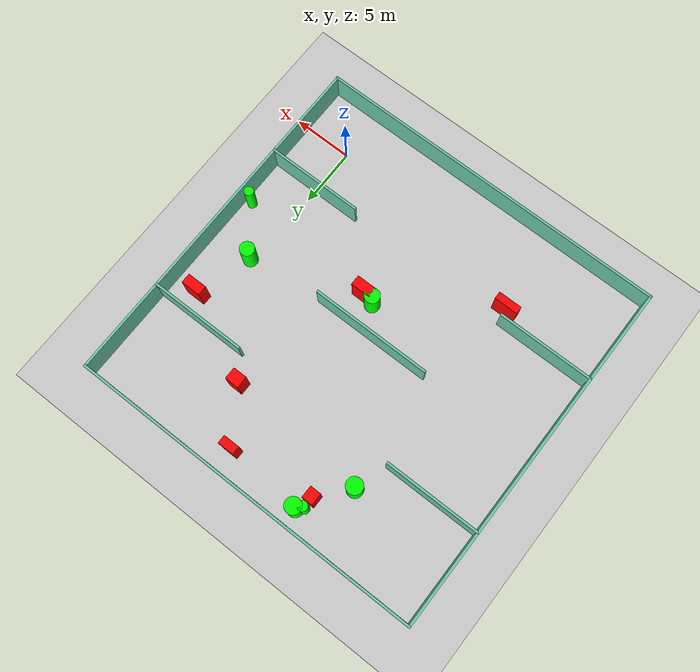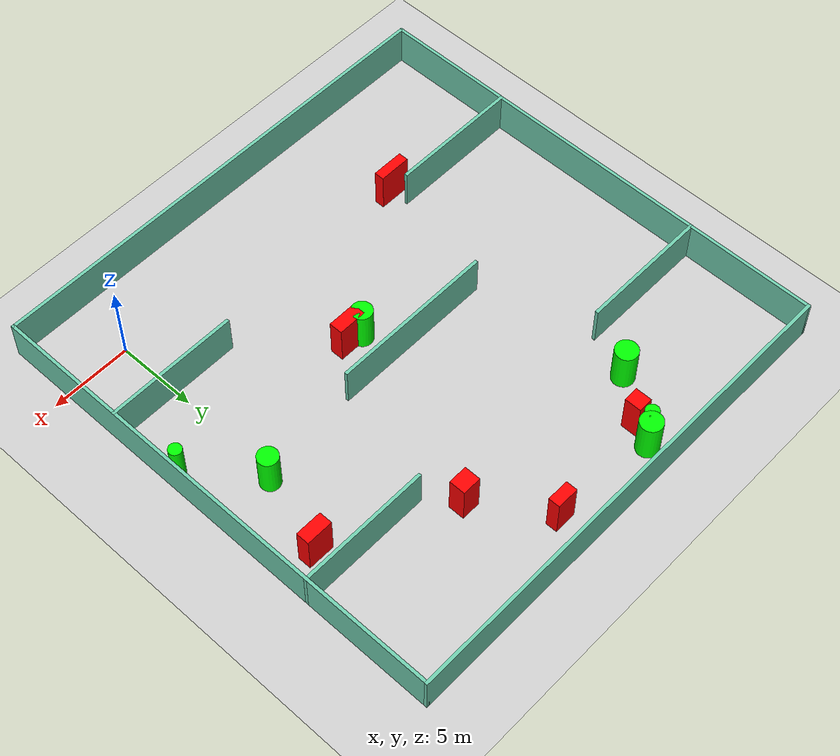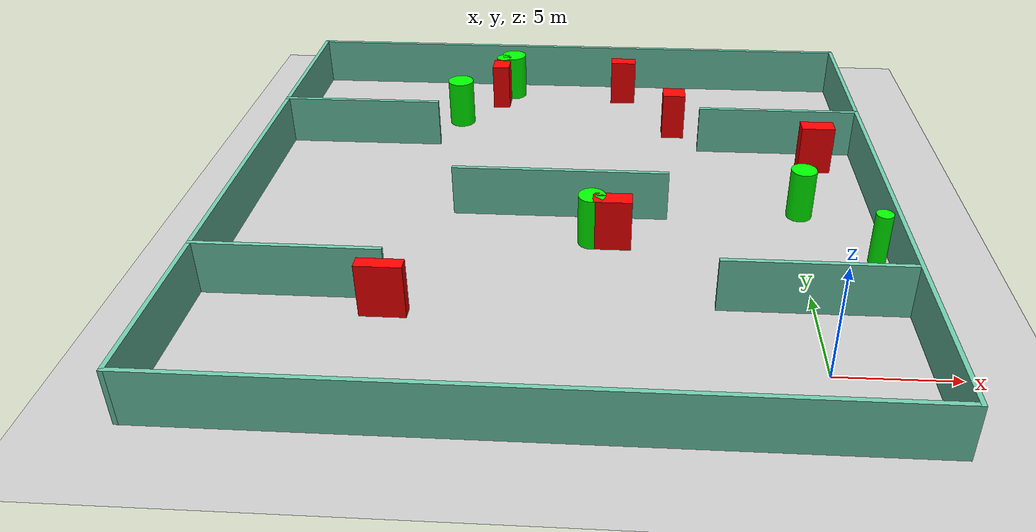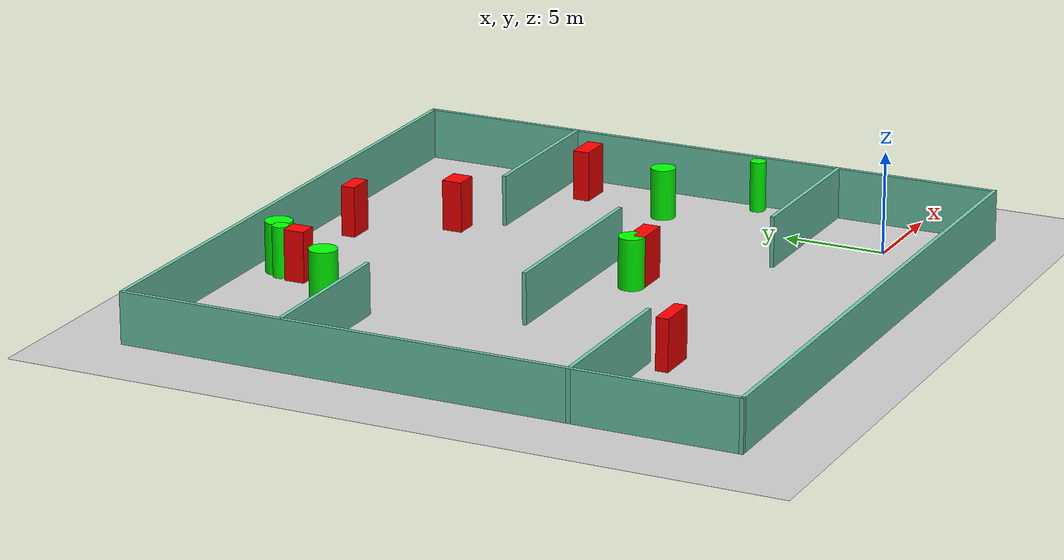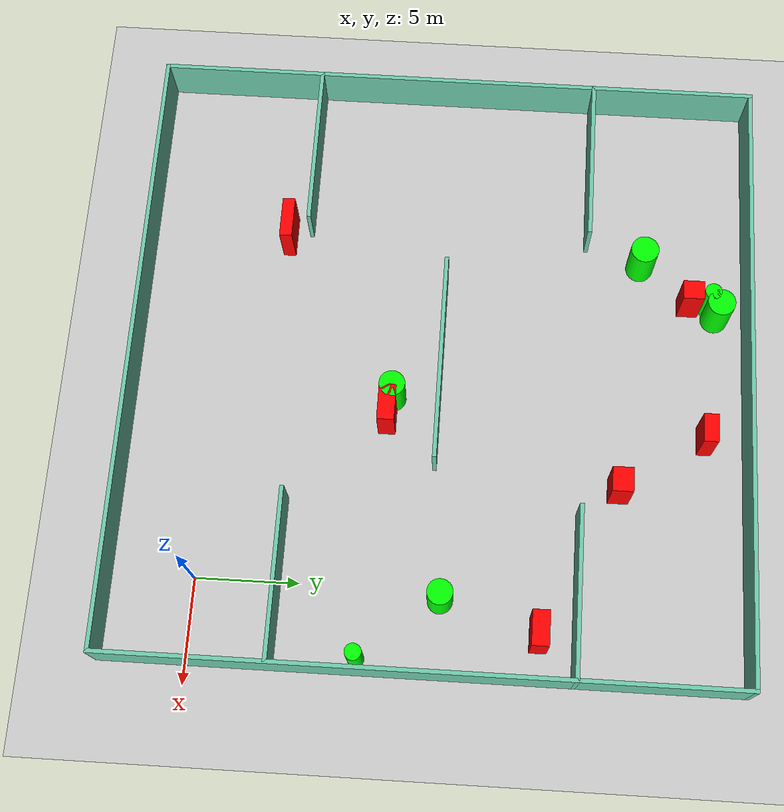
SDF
<sdf version="1.7">
 <world name="default">
  <light name="sun" type="directional">
   <pose>0 0 10 0 -0 0</pose>
   <diffuse>0.8 0.8 0.8 1</diffuse>
   <specular>0.2 0.2 0.2 1</specular>
   <attenuation>
    <range>1000</range>
    <constant>0.9</constant>
    <linear>0.01</linear>
    <quadratic>0.001</quadratic>
   </attenuation>
   <direction>-0.5 0.1 -0.9</direction>
   <spot><inner_angle>0</inner_angle><outer_angle>0</outer_angle><falloff>0</falloff></spot>
  </light>
  <model name="ground_plane">
   <static>1</static>
   <link name="link">
    <collision name="collision">
     <geometry><plane><normal>0 0 1</normal><size>100 100</size></plane></geometry>
     <surface>
      <contact><collide_bitmask>65535</collide_bitmask></contact>
      <friction><ode><mu>100</mu><mu2>50</mu2></ode></friction>
     </surface>
    </collision>
    <visual name="visual">
     <cast_shadows>0</cast_shadows>
     <geometry><plane><normal>0 0 1</normal><size>100 100</size></plane></geometry>
     <material>
      <script><uri>file://media/materials/scripts/gazebo.material</uri><name>Gazebo/Grey</name></script>
     </material>
    </visual>
   </link>
  </model>
  <gravity>0 0 -9.8</gravity>
  <magnetic_field>6e-06 2.3e-05 -4.2e-05</magnetic_field>
  <atmosphere type="adiabatic"/>
  <physics type="ode">
   <max_step_size>0.001</max_step_size>
   <real_time_factor>1</real_time_factor>
   <real_time_update_rate>1000</real_time_update_rate>
  </physics>
  <scene><ambient>0.4 0.4 0.4 1</ambient><background>0.7 0.7 0.7 1</background><shadows>1</shadows></scene>
  <spherical_coordinates>
   <surface_model>EARTH_WGS84</surface_model>
   <latitude_deg>0</latitude_deg>
   <longitude_deg>0</longitude_deg>
   <elevation>0</elevation>
   <heading_deg>0</heading_deg>
  </spherical_coordinates>
  <model name="my_base_walls">
   <link name="Wall_10">
    <collision name="Wall_10_Collision">
     <geometry><box><size>8.2 0.2 2.5</size></box></geometry>
     <pose>0 0 1.25 0 -0 0</pose>
    </collision>
    <visual name="Wall_10_Visual">
     <pose>0 0 1.25 0 -0 0</pose>
     <geometry><box><size>8.2 0.2 2.5</size></box></geometry>
     <material>
      <script><uri>file://media/materials/scripts/gazebo.material</uri><name>Gazebo/Grey</name></script>
      <ambient>0.435294 0.796078 0.67451 1</ambient>
     </material>
     <meta><layer>0</layer></meta>
    </visual>
    <pose>-11 -7 0 0 -0 0</pose>
   </link>
   <link name="Wall_12">
    <collision name="Wall_12_Collision">
     <geometry><box><size>8.2 0.2 2.5</size></box></geometry>
     <pose>0 0 1.25 0 -0 0</pose>
    </collision>
    <visual name="Wall_12_Visual">
     <pose>0 0 1.25 0 -0 0</pose>
     <geometry><box><size>8.2 0.2 2.5</size></box></geometry>
     <material>
      <script><uri>file://media/materials/scripts/gazebo.material</uri><name>Gazebo/Grey</name></script>
      <ambient>0.435294 0.796078 0.67451 1</ambient>
     </material>
     <meta><layer>0</layer></meta>
    </visual>
    <pose>-11 7 0 0 -0 0</pose>
   </link>
   <link name="Wall_14">
    <collision name="Wall_14_Collision">
     <geometry><box><size>8.2 0.2 2.5</size></box></geometry>
     <pose>0 0 1.25 0 -0 0</pose>
    </collision>
    <visual name="Wall_14_Visual">
     <pose>0 0 1.25 0 -0 0</pose>
     <geometry><box><size>8.2 0.2 2.5</size></box></geometry>
     <material>
      <script><uri>file://media/materials/scripts/gazebo.material</uri><name>Gazebo/Grey</name></script>
      <ambient>0.435294 0.796078 0.67451 1</ambient>
     </material>
     <meta><layer>0</layer></meta>
    </visual>
    <pose>11 7 0 0 -0 3.14159</pose>
   </link>
   <link name="Wall_16">
    <collision name="Wall_16_Collision">
     <geometry><box><size>10.2 0.2 2.5</size></box></geometry>
     <pose>0 0 1.25 0 -0 0</pose>
    </collision>
    <visual name="Wall_16_Visual">
     <pose>0 0 1.25 0 -0 0</pose>
     <geometry><box><size>10.2 0.2 2.5</size></box></geometry>
     <material>
      <script><uri>file://media/materials/scripts/gazebo.material</uri><name>Gazebo/Grey</name></script>
      <ambient>0.435294 0.796078 0.67451 1</ambient>
     </material>
     <meta><layer>0</layer></meta>
    </visual>
    <pose>0 0 0 0 -0 3.14159</pose>
   </link>
   <link name="Wall_2">
    <collision name="Wall_2_Collision">
     <geometry><box><size>30.2 0.2 2.5</size></box></geometry>
     <pose>0 0 1.25 0 -0 0</pose>
    </collision>
    <visual name="Wall_2_Visual">
     <pose>0 0 1.25 0 -0 0</pose>
     <geometry><box><size>30.2 0.2 2.5</size></box></geometry>
     <material>
      <script><uri>file://media/materials/scripts/gazebo.material</uri><name>Gazebo/Grey</name></script>
      <ambient>0.435294 0.796078 0.67451 1</ambient>
     </material>
     <meta><layer>0</layer></meta>
    </visual>
    <pose>0 -15 0 0 -0 3.14159</pose>
   </link>
   <link name="Wall_3">
    <collision name="Wall_3_Collision">
     <geometry><box><size>30.2 0.2 2.5</size></box></geometry>
     <pose>0 0 1.25 0 -0 0</pose>
    </collision>
    <visual name="Wall_3_Visual">
     <pose>0 0 1.25 0 -0 0</pose>
     <geometry><box><size>30.2 0.2 2.5</size></box></geometry>
     <material>
      <script><uri>file://media/materials/scripts/gazebo.material</uri><name>Gazebo/Grey</name></script>
      <ambient>0.435294 0.796078 0.67451 1</ambient>
     </material>
     <meta><layer>0</layer></meta>
    </visual>
    <pose>-15 0 0 0 -0 1.5708</pose>
   </link>
   <link name="Wall_4">
    <collision name="Wall_4_Collision">
     <geometry><box><size>30.2 0.2 2.5</size></box></geometry>
     <pose>0 0 1.25 0 -0 0</pose>
    </collision>
    <visual name="Wall_4_Visual">
     <pose>0 0 1.25 0 -0 0</pose>
     <geometry><box><size>30.2 0.2 2.5</size></box></geometry>
     <material>
      <script><uri>file://media/materials/scripts/gazebo.material</uri><name>Gazebo/Grey</name></script>
      <ambient>0.435294 0.796078 0.67451 1</ambient>
     </material>
     <meta><layer>0</layer></meta>
    </visual>
    <pose>0 15 0 0 -0 0</pose>
   </link>
   <link name="Wall_6">
    <collision name="Wall_6_Collision">
     <geometry><box><size>30.2 0.2 2.5</size></box></geometry>
     <pose>0 0 1.25 0 -0 0</pose>
    </collision>
    <visual name="Wall_6_Visual">
     <pose>0 0 1.25 0 -0 0</pose>
     <geometry><box><size>30.2 0.2 2.5</size></box></geometry>
     <material>
      <script><uri>file://media/materials/scripts/gazebo.material</uri><name>Gazebo/Grey</name></script>
      <ambient>0.435294 0.796078 0.67451 1</ambient>
     </material>
     <meta><layer>0</layer></meta>
    </visual>
    <pose>15 0 0 0 -0 1.5708</pose>
   </link>
   <link name="Wall_8">
    <collision name="Wall_8_Collision">
     <geometry><box><size>8.2 0.2 2.5</size></box></geometry>
     <pose>0 0 1.25 0 -0 0</pose>
    </collision>
    <visual name="Wall_8_Visual">
     <pose>0 0 1.25 0 -0 0</pose>
     <geometry><box><size>8.2 0.2 2.5</size></box></geometry>
     <material>
      <script><uri>file://media/materials/scripts/gazebo.material</uri><name>Gazebo/Grey</name></script>
      <ambient>0.435294 0.796078 0.67451 1</ambient>
     </material>
     <meta><layer>0</layer></meta>
    </visual>
    <pose>11 -7 0 0 -0 3.14159</pose>
   </link>
   <static>1</static>
   <pose>-11 11 0 0 -0 0</pose>
  </model>
  <model name="cylinder1">
   <static>1</static>
   <link name="link">
    <inertial>
     <mass>1</mass>
     <inertia><ixx>0.5</ixx><ixy>0</ixy><ixz>0</ixz><iyy>0.5</iyy><iyz>0</iyz><izz>1</izz></inertia>
    </inertial>
    <collision name="collision">
     <geometry><cylinder><radius>0.6747850485931851</radius><length>2.5</length></cylinder></geometry>
    </collision>
    <visual name="visual">
     <geometry><cylinder><radius>0.6747850485931851</radius><length>2.5</length></cylinder></geometry>
     <material>
      <ambient>0 1 0 1</ambient>
      <diffuse>0 1 0 1</diffuse>
      <specular>0.1 0.1 0.1 1</specular>
      <emissive>0 0 0 0</emissive>
     </material>
    </visual>
   </link>
   <pose>-14.523431254704844 24.51755933428242 1.25 0 0 0</pose>
  </model>
  <model name="cylinder2">
   <static>1</static>
   <link name="link">
    <inertial>
     <mass>1</mass>
     <inertia><ixx>0.5</ixx><ixy>0</ixy><ixz>0</ixz><iyy>0.5</iyy><iyz>0</iyz><izz>1</izz></inertia>
    </inertial>
    <collision name="collision">
     <geometry><cylinder><radius>0.392514040586331</radius><length>2.5</length></cylinder></geometry>
    </collision>
    <visual name="visual">
     <geometry><cylinder><radius>0.392514040586331</radius><length>2.5</length></cylinder></geometry>
     <material>
      <ambient>0 1 0 1</ambient>
      <diffuse>0 1 0 1</diffuse>
      <specular>0.1 0.1 0.1 1</specular>
      <emissive>0 0 0 0</emissive>
     </material>
    </visual>
   </link>
   <pose>3.344044546243456 7.9133064944649405 1.25 0 0 0</pose>
  </model>
  <model name="cylinder3">
   <static>1</static>
   <link name="link">
    <inertial>
     <mass>1</mass>
     <inertia><ixx>0.5</ixx><ixy>0</ixy><ixz>0</ixz><iyy>0.5</iyy><iyz>0</iyz><izz>1</izz></inertia>
    </inertial>
    <collision name="collision">
     <geometry><cylinder><radius>0.6304207826499486</radius><length>2.5</length></cylinder></geometry>
    </collision>
    <visual name="visual">
     <geometry><cylinder><radius>0.6304207826499486</radius><length>2.5</length></cylinder></geometry>
     <material>
      <ambient>0 1 0 1</ambient>
      <diffuse>0 1 0 1</diffuse>
      <specular>0.1 0.1 0.1 1</specular>
      <emissive>0 0 0 0</emissive>
     </material>
    </visual>
   </link>
   <pose>-9.416760023756485 8.76544155235808 1.25 0 0 0</pose>
  </model>
  <model name="cylinder4">
   <static>1</static>
   <link name="link">
    <inertial>
     <mass>1</mass>
     <inertia><ixx>0.5</ixx><ixy>0</ixy><ixz>0</ixz><iyy>0.5</iyy><iyz>0</iyz><izz>1</izz></inertia>
    </inertial>
    <collision name="collision">
     <geometry><cylinder><radius>0.40872585027759123</radius><length>2.5</length></cylinder></geometry>
    </collision>
    <visual name="visual">
     <geometry><cylinder><radius>0.40872585027759123</radius><length>2.5</length></cylinder></geometry>
     <material>
      <ambient>0 1 0 1</ambient>
      <diffuse>0 1 0 1</diffuse>
      <specular>0.1 0.1 0.1 1</specular>
      <emissive>0 0 0 0</emissive>
     </material>
    </visual>
   </link>
   <pose>-15.066566868517747 24.123967942247006 1.25 0 0 0</pose>
  </model>
  <model name="cylinder5">
   <static>1</static>
   <link name="link">
    <inertial>
     <mass>1</mass>
     <inertia><ixx>0.5</ixx><ixy>0</ixy><ixz>0</ixz><iyy>0.5</iyy><iyz>0</iyz><izz>1</izz></inertia>
    </inertial>
    <collision name="collision">
     <geometry><cylinder><radius>0.6108506332317045</radius><length>2.5</length></cylinder></geometry>
    </collision>
    <visual name="visual">
     <geometry><cylinder><radius>0.6108506332317045</radius><length>2.5</length></cylinder></geometry>
     <material>
      <ambient>0 1 0 1</ambient>
      <diffuse>0 1 0 1</diffuse>
      <specular>0.1 0.1 0.1 1</specular>
      <emissive>0 0 0 0</emissive>
     </material>
    </visual>
   </link>
   <pose>0.4199078512054619 11.648131524963816 1.25 0 0 0</pose>
  </model>
  <model name="cylinder6">
   <static>1</static>
   <link name="link">
    <inertial>
     <mass>1</mass>
     <inertia><ixx>0.5</ixx><ixy>0</ixy><ixz>0</ixz><iyy>0.5</iyy><iyz>0</iyz><izz>1</izz></inertia>
    </inertial>
    <collision name="collision">
     <geometry><cylinder><radius>0.6835850625660895</radius><length>2.5</length></cylinder></geometry>
    </collision>
    <visual name="visual">
     <geometry><cylinder><radius>0.6835850625660895</radius><length>2.5</length></cylinder></geometry>
     <material>
      <ambient>0 1 0 1</ambient>
      <diffuse>0 1 0 1</diffuse>
      <specular>0.1 0.1 0.1 1</specular>
      <emissive>0 0 0 0</emissive>
     </material>
    </visual>
   </link>
   <pose>-17.10084512822779 20.746443113922833 1.25 0 0 0</pose>
  </model>
  <model name="box1">
   <static>1</static>
   <link name="link">
    <inertial>
     <mass>1</mass>
     <inertia><ixx>0.083</ixx><ixy>0</ixy><ixz>0</ixz><iyy>0.083</iyy><iyz>0</iyz><izz>0.083</izz></inertia>
    </inertial>
    <collision name="collision">
     <geometry><box><size>2.0018933428961776 0.6134056311277349 2.5</size></box></geometry>
    </collision>
    <visual name="visual">
     <geometry><box><size>2.0018933428961776 0.6134056311277349 2.5</size></box></geometry>
     <material>
      <ambient>1 0 0 1</ambient>
      <diffuse>1 0 0 1</diffuse>
      <specular>0.1 0.1 0.1 1</specular>
      <emissive>0 0 0 0</emissive>
     </material>
    </visual>
    <sensor name="my_contact" type="contact">
     <contact><collision>box_collision</collision><topic>__default_topic__</topic></contact>
    </sensor>
   </link>
   <pose>-17.80762513254754 2.9534454565722257 1.25 0 0 0</pose>
  </model>
  <model name="box2">
   <static>1</static>
   <link name="link">
    <inertial>
     <mass>1</mass>
     <inertia><ixx>0.083</ixx><ixy>0</ixy><ixz>0</ixz><iyy>0.083</iyy><iyz>0</iyz><izz>0.083</izz></inertia>
    </inertial>
    <collision name="collision">
     <geometry><box><size>0.9237934933237999 1.0221419880024887 2.5</size></box></geometry>
    </collision>
    <visual name="visual">
     <geometry><box><size>0.9237934933237999 1.0221419880024887 2.5</size></box></geometry>
     <material>
      <ambient>1 0 0 1</ambient>
      <diffuse>1 0 0 1</diffuse>
      <specular>0.1 0.1 0.1 1</specular>
      <emissive>0 0 0 0</emissive>
     </material>
    </visual>
    <sensor name="my_contact" type="contact">
     <contact><collision>box_collision</collision><topic>__default_topic__</topic></contact>
    </sensor>
   </link>
   <pose>-15.097590490112722 23.16454108133958 1.25 0 0 0</pose>
  </model>
  <model name="box3">
   <static>1</static>
   <link name="link">
    <inertial>
     <mass>1</mass>
     <inertia><ixx>0.083</ixx><ixy>0</ixy><ixz>0</ixz><iyy>0.083</iyy><iyz>0</iyz><izz>0.083</izz></inertia>
    </inertial>
    <collision name="collision">
     <geometry><box><size>1.1725095256905886 1.003362076887473 2.5</size></box></geometry>
    </collision>
    <visual name="visual">
     <geometry><box><size>1.1725095256905886 1.003362076887473 2.5</size></box></geometry>
     <material>
      <ambient>1 0 0 1</ambient>
      <diffuse>1 0 0 1</diffuse>
      <specular>0.1 0.1 0.1 1</specular>
      <emissive>0 0 0 0</emissive>
     </material>
    </visual>
    <sensor name="my_contact" type="contact">
     <contact><collision>box_collision</collision><topic>__default_topic__</topic></contact>
    </sensor>
   </link>
   <pose>-5.362361327453135 19.882683450425183 1.25 0 0 0</pose>
  </model>
  <model name="box4">
   <static>1</static>
   <link name="link">
    <inertial>
     <mass>1</mass>
     <inertia><ixx>0.083</ixx><ixy>0</ixy><ixz>0</ixz><iyy>0.083</iyy><iyz>0</iyz><izz>0.083</izz></inertia>
    </inertial>
    <collision name="collision">
     <geometry><box><size>1.3665818957558353 0.7049397315284807 2.5</size></box></geometry>
    </collision>
    <visual name="visual">
     <geometry><box><size>1.3665818957558353 0.7049397315284807 2.5</size></box></geometry>
     <material>
      <ambient>1 0 0 1</ambient>
      <diffuse>1 0 0 1</diffuse>
      <specular>0.1 0.1 0.1 1</specular>
      <emissive>0 0 0 0</emissive>
     </material>
    </visual>
    <sensor name="my_contact" type="contact">
     <contact><collision>box_collision</collision><topic>__default_topic__</topic></contact>
    </sensor>
   </link>
   <pose>-8.118621246720755 24.001328995982725 1.25 0 0 0</pose>
  </model>
  <model name="box5">
   <static>1</static>
   <link name="link">
    <inertial>
     <mass>1</mass>
     <inertia><ixx>0.083</ixx><ixy>0</ixy><ixz>0</ixz><iyy>0.083</iyy><iyz>0</iyz><izz>0.083</izz></inertia>
    </inertial>
    <collision name="collision">
     <geometry><box><size>1.6473739419657847 0.8207914584503836 2.5</size></box></geometry>
    </collision>
    <visual name="visual">
     <geometry><box><size>1.6473739419657847 0.8207914584503836 2.5</size></box></geometry>
     <material>
      <ambient>1 0 0 1</ambient>
      <diffuse>1 0 0 1</diffuse>
      <specular>0.1 0.1 0.1 1</specular>
      <emissive>0 0 0 0</emissive>
     </material>
    </visual>
    <sensor name="my_contact" type="contact">
     <contact><collision>box_collision</collision><topic>__default_topic__</topic></contact>
    </sensor>
   </link>
   <pose>1.7605181069644722 16.30464829854552 1.25 0 0 0</pose>
  </model>
  <model name="box6">
   <static>1</static>
   <link name="link">
    <inertial>
     <mass>1</mass>
     <inertia><ixx>0.083</ixx><ixy>0</ixy><ixz>0</ixz><iyy>0.083</iyy><iyz>0</iyz><izz>0.083</izz></inertia>
    </inertial>
    <collision name="collision">
     <geometry><box><size>1.7734733232742377 0.830980774277996 2.5</size></box></geometry>
    </collision>
    <visual name="visual">
     <geometry><box><size>1.7734733232742377 0.830980774277996 2.5</size></box></geometry>
     <material>
      <ambient>1 0 0 1</ambient>
      <diffuse>1 0 0 1</diffuse>
      <specular>0.1 0.1 0.1 1</specular>
      <emissive>0 0 0 0</emissive>
     </material>
    </visual>
    <sensor name="my_contact" type="contact">
     <contact><collision>box_collision</collision><topic>__default_topic__</topic></contact>
    </sensor>
   </link>
   <pose>-8.493075499532988 8.57053222439378 1.25 0 0 0</pose>
  </model>
 </world>
</sdf>
